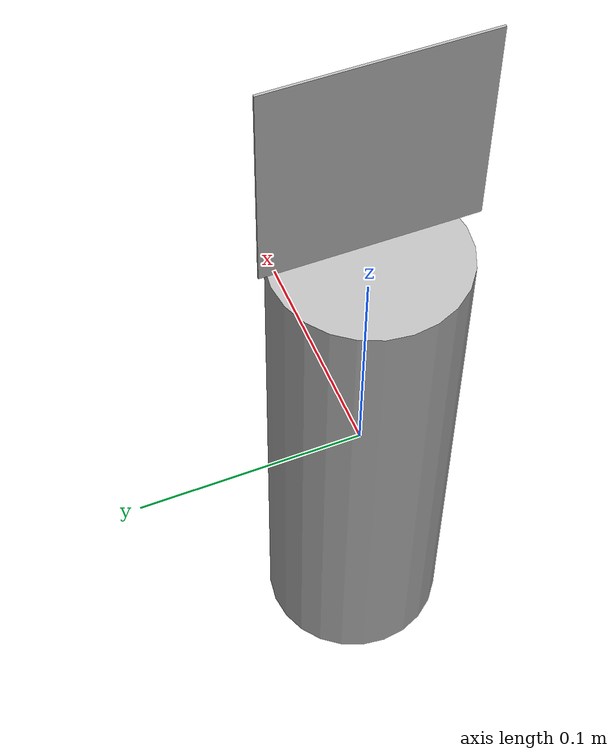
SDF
<?xml version="1.0" ?>
<sdf version="1.4">
  <model name="pringles_with_marker">
    <static>0</static>
    <link name="link">
      <inertial>
        <mass>0.25</mass>
        <inertia>
          <ixx>0.000000</ixx>
          <ixy>0.000000</ixy>
          <ixz>0.000000</ixz>
          <iyy>0.000000</iyy>
          <iyz>0.000000</iyz>
          <izz>0.000000</izz>
        </inertia>
      </inertial>
      <collision name="collision">
        <geometry>
          <cylinder>
            <radius>0.04</radius>
            <length>0.235</length>
          </cylinder>
        </geometry>
        <surface>
          <bounce />
          <friction>
            <ode />
          </friction>
          <contact>
            <ode />
          </contact>
        </surface>
      </collision>
      <visual name="visual">
        <geometry>
          <cylinder>
            <radius>0.04</radius>
            <length>0.235</length>
          </cylinder>
        </geometry>
        <material>
          <script>
            <uri>model://pringles/material/scripts</uri>
            <uri>model://pringles/material/textures</uri>
            <name>Custom/pringles</name>
          </script>
        </material>
      </visual>
      <velocity_decay>
        <linear>0.000000</linear>
        <angular>0.000000</angular>
      </velocity_decay>
      <self_collide>0</self_collide>
      <kinematic>0</kinematic>
      <gravity>1</gravity>
    </link>
    <!-- A marker on top of the can -->
    <include>
      <uri>model://marker26_8cm</uri>
      <pose>0 0 0.17 3.14 -1.57 0</pose>
    </include>
  </model>
</sdf>

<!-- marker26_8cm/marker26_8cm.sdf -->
<sdf version='1.3'>
  <model name="pringles">
      <static>0</static>
      <link name="marker">
        <inertial>
          <mass>0.1</mass>
          <inertia>
            <ixx>0.000000</ixx>
            <ixy>0.000000</ixy>
            <ixz>0.000000</ixz>
            <iyy>0.000000</iyy>
            <iyz>0.000000</iyz>
            <izz>0.000000</izz>
          </inertia>
	</inertial>
	<visual name='visual'>
	  <geometry>
	    <box>
             <size>0.09 0.09 0.001</size> <!-- SIZE OF THE MARKER + MARGIN -->
            </box>
	  </geometry>
	  <material>
            <script>
              <uri>file://Media/materials/scripts/markers.material</uri>
              <name>Aruco/marker26_8cm</name>
            </script>
	  </material>
	</visual>
	<collision name='collision'>
	  <geometry>
	    <box>
             <size>0.09 0.09 0.02</size> <!-- SIZE OF THE MARKER + MARGIN -->
            </box>
	  </geometry>
          <surface>
            <bounce/>
            <friction>
              <ode/>
            </friction>
            <contact>
              <ode/>
            </contact>
          </surface>
	</collision>
        <self_collide>1</self_collide>
        <kinematic>0</kinematic>
        <gravity>1</gravity>
      </link>
  </model>
</sdf>
